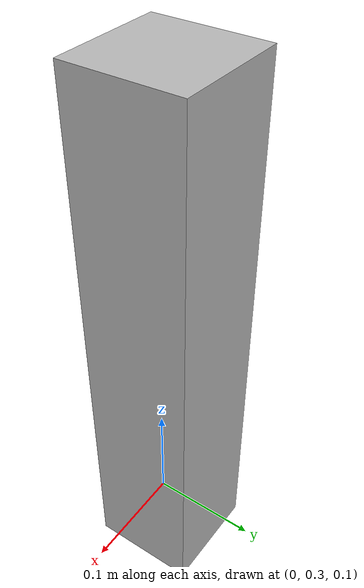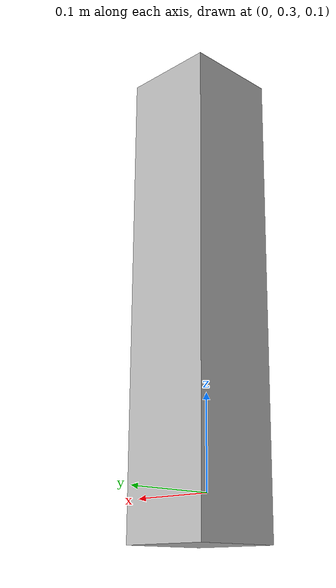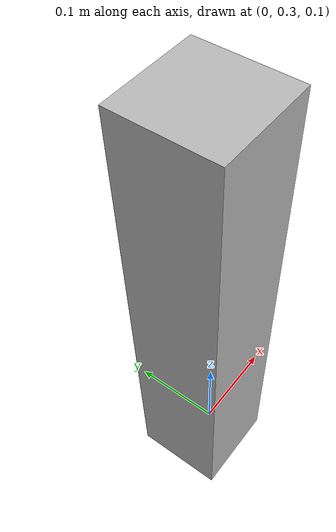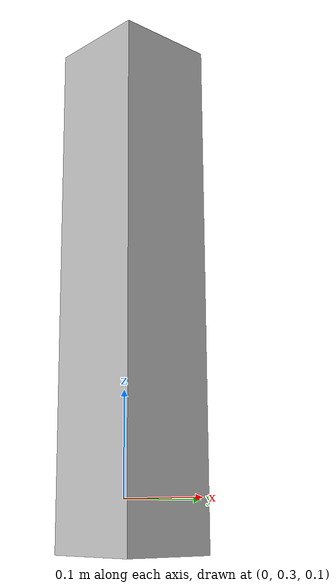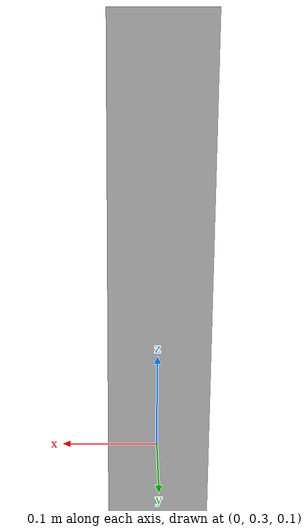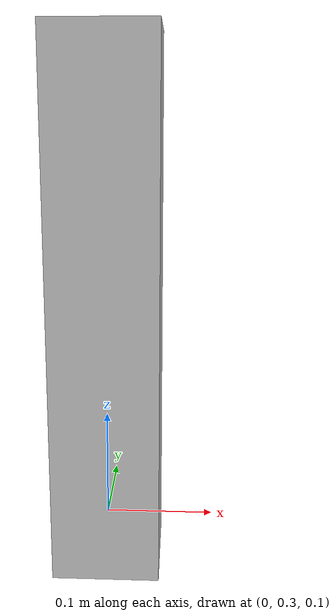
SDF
<?xml version='1.0'?>
<sdf version="1.5">
    <model name="arm">
        <pose>0 0 0 0 0 0</pose>
        <static>false</static>
        <link name='arm_holder'>
            <gravity>0</gravity>
            <pose>0 0.31 .3 0 0 0</pose>
            <inertial>
                <mass>2</mass>
                <pose frame=''>0 0 0 0 -0 0</pose>
                <inertia>
                    <ixx>1</ixx>
                    <ixy>0</ixy>
                    <ixz>0</ixz>
                    <iyy>1</iyy>
                    <iyz>0</iyz>
                    <izz>1</izz>
                </inertia>
            </inertial>
            <collision name='collision'>
                <geometry>
                    <box>
                        <size>.1 .1 .5</size>
                    </box>
                </geometry>
            </collision>
            <visual name='visual'>
                <geometry>
                    <box>
                        <size>.1 .1 .5</size>
                    </box>
                </geometry>
                <plugin name="tendon_visualizer" filename="libtendon_visualizer.so"/>
            </visual>
        </link>
    </model>
</sdf>
